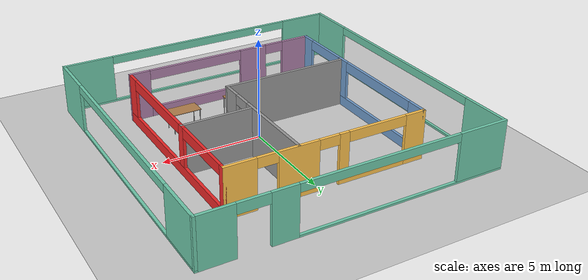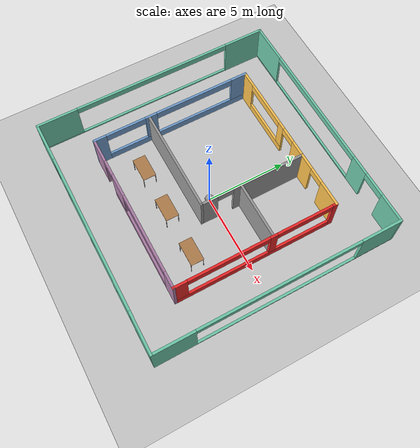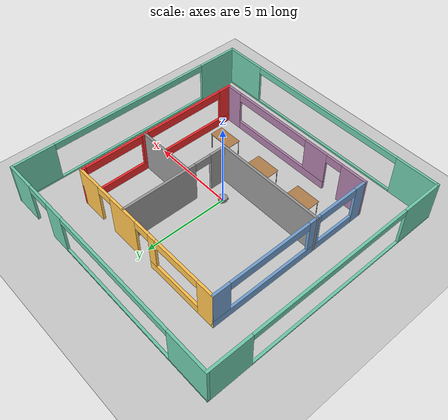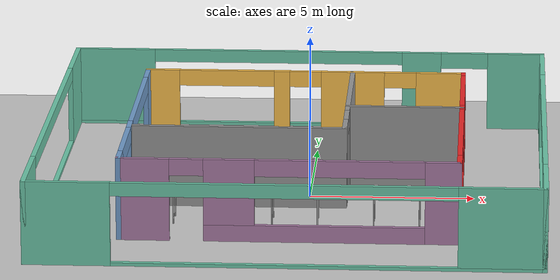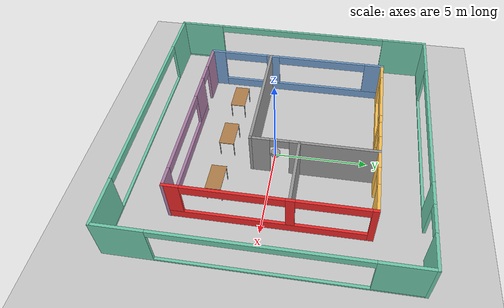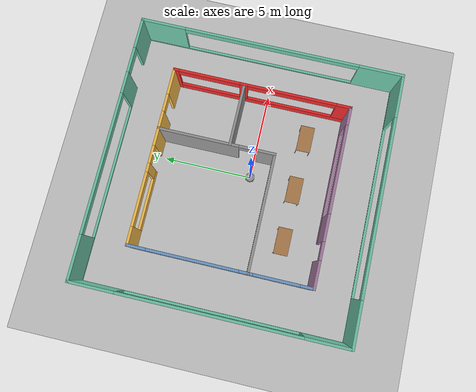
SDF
<sdf version="1.6">
 <world name="default">
  <model name="ground_plane">
   <static>1</static>
   <link name="link">
    <collision name="collision">
     <geometry><plane><normal>0 0 1</normal><size>100 100</size></plane></geometry>
     <surface>
      <contact><collide_bitmask>65535</collide_bitmask></contact>
      <friction><ode><mu>100</mu><mu2>50</mu2></ode></friction>
     </surface>
    </collision>
    <visual name="visual">
     <cast_shadows>0</cast_shadows>
     <geometry><plane><normal>0 0 1</normal><size>100 100</size></plane></geometry>
     <material>
      <script><uri>file://media/materials/scripts/gazebo.material</uri><name>Gazebo/Grey</name></script>
     </material>
    </visual>
   </link>
  </model>
  <model name="robot">
   <link name="link_0">
    <inertial>
     <mass>1</mass>
     <inertia><ixx>0.145833</ixx><ixy>0</ixy><ixz>0</ixz><iyy>0.145833</iyy><iyz>0</iyz><izz>0.125</izz></inertia>
    </inertial>
    <pose>-0.1 0.2 0.1 1.5708 -0 0</pose>
    <visual name="visual">
     <geometry><cylinder><radius>0.1</radius><length>0.05</length></cylinder></geometry>
     <material>
      <lighting>1</lighting>
      <script><uri>file://media/materials/scripts/gazebo.material</uri><name>Gazebo/Grey</name></script>
      <shader type="vertex"><normal_map>__default__</normal_map></shader>
      <ambient>0.3 0.3 0.3 1</ambient>
      <diffuse>0.7 0.7 0.7 1</diffuse>
      <specular>0.01 0.01 0.01 1</specular>
      <emissive>0 0 0 1</emissive>
     </material>
    </visual>
    <collision name="collision">
     <geometry><cylinder><radius>0.1</radius><length>0.05</length></cylinder></geometry>
     <surface>
      <friction>
       <ode><mu>1</mu><mu2>1</mu2><fdir1>0 0 0</fdir1><slip1>0</slip1><slip2>0</slip2></ode>
       <torsional>
        <coefficient>1</coefficient>
        <patch_radius>0</patch_radius>
        <surface_radius>0</surface_radius>
        <use_patch_radius>1</use_patch_radius>
        <ode><slip>0</slip></ode>
       </torsional>
      </friction>
      <bounce><restitution_coefficient>0</restitution_coefficient><threshold>1e+06</threshold></bounce>
      <contact>
       <collide_without_contact>0</collide_without_contact>
       <collide_without_contact_bitmask>1</collide_without_contact_bitmask>
       <collide_bitmask>1</collide_bitmask>
       <ode>
        <soft_cfm>0</soft_cfm>
        <soft_erp>0.2</soft_erp>
        <kp>1e+13</kp>
        <kd>1</kd>
        <max_vel>0.01</max_vel>
        <min_depth>0</min_depth>
       </ode>
       <bullet>
        <split_impulse>1</split_impulse>
        <split_impulse_penetration_threshold>-0.01</split_impulse_penetration_threshold>
        <soft_cfm>0</soft_cfm>
        <soft_erp>0.2</soft_erp>
        <kp>1e+13</kp>
        <kd>1</kd>
       </bullet>
      </contact>
     </surface>
    </collision>
   </link>
   <link name="link_0_clone">
    <inertial>
     <mass>1</mass>
     <inertia><ixx>0.145833</ixx><ixy>0</ixy><ixz>0</ixz><iyy>0.145833</iyy><iyz>0</iyz><izz>0.125</izz></inertia>
    </inertial>
    <pose>-0.1 -0.2 0.1 1.5708 -0 0</pose>
    <visual name="visual">
     <geometry><cylinder><radius>0.1</radius><length>0.05</length></cylinder></geometry>
     <material>
      <lighting>1</lighting>
      <script><uri>file://media/materials/scripts/gazebo.material</uri><name>Gazebo/Grey</name></script>
      <shader type="vertex"><normal_map>__default__</normal_map></shader>
      <ambient>0.3 0.3 0.3 1</ambient>
      <diffuse>0.7 0.7 0.7 1</diffuse>
      <specular>0.01 0.01 0.01 1</specular>
      <emissive>0 0 0 1</emissive>
     </material>
    </visual>
    <collision name="collision">
     <geometry><cylinder><radius>0.1</radius><length>0.05</length></cylinder></geometry>
     <surface>
      <friction>
       <ode><mu>1</mu><mu2>1</mu2><fdir1>0 0 0</fdir1><slip1>0</slip1><slip2>0</slip2></ode>
       <torsional>
        <coefficient>1</coefficient>
        <patch_radius>0</patch_radius>
        <surface_radius>0</surface_radius>
        <use_patch_radius>1</use_patch_radius>
        <ode><slip>0</slip></ode>
       </torsional>
      </friction>
      <bounce><restitution_coefficient>0</restitution_coefficient><threshold>1e+06</threshold></bounce>
      <contact>
       <collide_without_contact>0</collide_without_contact>
       <collide_without_contact_bitmask>1</collide_without_contact_bitmask>
       <collide_bitmask>1</collide_bitmask>
       <ode>
        <soft_cfm>0</soft_cfm>
        <soft_erp>0.2</soft_erp>
        <kp>1e+13</kp>
        <kd>1</kd>
        <max_vel>0.01</max_vel>
        <min_depth>0</min_depth>
       </ode>
       <bullet>
        <split_impulse>1</split_impulse>
        <split_impulse_penetration_threshold>-0.01</split_impulse_penetration_threshold>
        <soft_cfm>0</soft_cfm>
        <soft_erp>0.2</soft_erp>
        <kp>1e+13</kp>
        <kd>1</kd>
       </bullet>
      </contact>
     </surface>
    </collision>
   </link>
   <link name="link_1">
    <inertial>
     <mass>1</mass>
     <inertia><ixx>0.145833</ixx><ixy>0</ixy><ixz>0</ixz><iyy>0.145833</iyy><iyz>0</iyz><izz>0.125</izz></inertia>
    </inertial>
    <pose>-0 0 0.15 0 -0 0</pose>
    <visual name="visual">
     <geometry><cylinder><radius>0.25</radius><length>0.2</length></cylinder></geometry>
     <material>
      <lighting>1</lighting>
      <script><uri>file://media/materials/scripts/gazebo.material</uri><name>Gazebo/Grey</name></script>
      <shader type="vertex"><normal_map>__default__</normal_map></shader>
      <ambient>0.3 0.3 0.3 1</ambient>
      <diffuse>0.7 0.7 0.7 1</diffuse>
      <specular>0.01 0.01 0.01 1</specular>
      <emissive>0 0 0 1</emissive>
     </material>
    </visual>
    <collision name="collision">
     <geometry><cylinder><radius>0.25</radius><length>0.2</length></cylinder></geometry>
     <surface>
      <friction>
       <ode><mu>1</mu><mu2>1</mu2><fdir1>0 0 0</fdir1><slip1>0</slip1><slip2>0</slip2></ode>
       <torsional>
        <coefficient>1</coefficient>
        <patch_radius>0</patch_radius>
        <surface_radius>0</surface_radius>
        <use_patch_radius>1</use_patch_radius>
        <ode><slip>0</slip></ode>
       </torsional>
      </friction>
      <bounce><restitution_coefficient>0</restitution_coefficient><threshold>1e+06</threshold></bounce>
      <contact>
       <collide_without_contact>0</collide_without_contact>
       <collide_without_contact_bitmask>1</collide_without_contact_bitmask>
       <collide_bitmask>1</collide_bitmask>
       <ode>
        <soft_cfm>0</soft_cfm>
        <soft_erp>0.2</soft_erp>
        <kp>1e+13</kp>
        <kd>1</kd>
        <max_vel>0.01</max_vel>
        <min_depth>0</min_depth>
       </ode>
       <bullet>
        <split_impulse>1</split_impulse>
        <split_impulse_penetration_threshold>-0.01</split_impulse_penetration_threshold>
        <soft_cfm>0</soft_cfm>
        <soft_erp>0.2</soft_erp>
        <kp>1e+13</kp>
        <kd>1</kd>
       </bullet>
      </contact>
     </surface>
    </collision>
   </link>
   <link name="link_2">
    <inertial>
     <mass>1</mass>
     <inertia><ixx>0.1</ixx><ixy>0</ixy><ixz>0</ixz><iyy>0.1</iyy><iyz>0</iyz><izz>0.1</izz></inertia>
    </inertial>
    <pose>0.15 0 0.075 0 -0 0</pose>
    <visual name="visual">
     <geometry><sphere><radius>0.075</radius></sphere></geometry>
     <material>
      <lighting>1</lighting>
      <script><uri>file://media/materials/scripts/gazebo.material</uri><name>Gazebo/Grey</name></script>
      <shader type="vertex"><normal_map>__default__</normal_map></shader>
      <ambient>0.3 0.3 0.3 1</ambient>
      <diffuse>0.7 0.7 0.7 1</diffuse>
      <specular>0.01 0.01 0.01 1</specular>
      <emissive>0 0 0 1</emissive>
     </material>
    </visual>
    <collision name="collision">
     <geometry><sphere><radius>0.075</radius></sphere></geometry>
     <surface>
      <friction>
       <ode><mu>1</mu><mu2>1</mu2><fdir1>0 0 0</fdir1><slip1>0</slip1><slip2>0</slip2></ode>
       <torsional>
        <coefficient>1</coefficient>
        <patch_radius>0</patch_radius>
        <surface_radius>0</surface_radius>
        <use_patch_radius>1</use_patch_radius>
        <ode><slip>0</slip></ode>
       </torsional>
      </friction>
      <bounce><restitution_coefficient>0</restitution_coefficient><threshold>1e+06</threshold></bounce>
      <contact>
       <collide_without_contact>0</collide_without_contact>
       <collide_without_contact_bitmask>1</collide_without_contact_bitmask>
       <collide_bitmask>1</collide_bitmask>
       <ode>
        <soft_cfm>0</soft_cfm>
        <soft_erp>0.2</soft_erp>
        <kp>1e+13</kp>
        <kd>1</kd>
        <max_vel>0.01</max_vel>
        <min_depth>0</min_depth>
       </ode>
       <bullet>
        <split_impulse>1</split_impulse>
        <split_impulse_penetration_threshold>-0.01</split_impulse_penetration_threshold>
        <soft_cfm>0</soft_cfm>
        <soft_erp>0.2</soft_erp>
        <kp>1e+13</kp>
        <kd>1</kd>
       </bullet>
      </contact>
     </surface>
    </collision>
   </link>
   <joint name="link_1_JOINT_0" type="ball">
    <parent>link_1</parent>
    <child>link_2</child>
    <physics>
     <ode><limit><cfm>0</cfm><erp>0.2</erp></limit><suspension><cfm>0</cfm><erp>0.2</erp></suspension></ode>
    </physics>
   </joint>
   <joint name="link_1_JOINT_1" type="revolute">
    <parent>link_1</parent>
    <child>link_0_clone</child>
    <axis>
     <xyz>0 0 1</xyz>
     <use_parent_model_frame>0</use_parent_model_frame>
     <limit>
      <lower>-1.79769e+308</lower>
      <upper>1.79769e+308</upper>
      <effort>-1</effort>
      <velocity>-1</velocity>
     </limit>
     <dynamics>
      <spring_reference>0</spring_reference>
      <spring_stiffness>0</spring_stiffness>
      <damping>0</damping>
     </dynamics>
    </axis>
    <physics>
     <ode><limit><cfm>0</cfm><erp>0.2</erp></limit><suspension><cfm>0</cfm><erp>0.2</erp></suspension></ode>
    </physics>
   </joint>
   <joint name="link_1_JOINT_2" type="revolute">
    <parent>link_1</parent>
    <child>link_0</child>
    <axis>
     <xyz>0 0 1</xyz>
     <use_parent_model_frame>0</use_parent_model_frame>
     <limit>
      <lower>-1.79769e+308</lower>
      <upper>1.79769e+308</upper>
      <effort>-1</effort>
      <velocity>-1</velocity>
     </limit>
     <dynamics>
      <spring_reference>0</spring_reference>
      <spring_stiffness>0</spring_stiffness>
      <damping>0</damping>
     </dynamics>
    </axis>
    <physics>
     <ode><limit><cfm>0</cfm><erp>0.2</erp></limit><suspension><cfm>0</cfm><erp>0.2</erp></suspension></ode>
    </physics>
   </joint>
   <static>0</static>
   <pose>-0.000282 -0.000108 0.001316 -1e-06 -0.013075 -0.000956</pose>
  </model>
  <model name="building">
   <pose>-0.407879 0.40823 0 0 -0 0</pose>
   <link name="Wall_11">
    <pose>0 5 0 0 -0 0</pose>
    <visual name="Wall_11_Visual_0">
     <pose>-4.5375 0 1.25 0 -0 0</pose>
     <geometry><box><size>1.075 0.15 2.5</size></box></geometry>
     <material>
      <script><uri>file://media/materials/scripts/gazebo.material</uri><name>Gazebo/Grey</name></script>
      <ambient>1 0.764706 0.305882 1</ambient>
     </material>
     <meta><layer>0</layer></meta>
    </visual>
    <collision name="Wall_11_Collision_0">
     <geometry><box><size>1.075 0.15 2.5</size></box></geometry>
     <pose>-4.5375 0 1.25 0 -0 0</pose>
    </collision>
    <visual name="Wall_11_Visual_1">
     <pose>1.5 0 1.25 0 -0 0</pose>
     <geometry><box><size>2 0.15 2.5</size></box></geometry>
     <material>
      <script><uri>file://media/materials/scripts/gazebo.material</uri><name>Gazebo/Grey</name></script>
      <ambient>1 0.764706 0.305882 1</ambient>
     </material>
     <meta><layer>0</layer></meta>
    </visual>
    <collision name="Wall_11_Collision_1">
     <geometry><box><size>2 0.15 2.5</size></box></geometry>
     <pose>1.5 0 1.25 0 -0 0</pose>
    </collision>
    <visual name="Wall_11_Visual_2">
     <pose>4.2875 0 1.25 0 -0 0</pose>
     <geometry><box><size>1.575 0.15 2.5</size></box></geometry>
     <material>
      <script><uri>file://media/materials/scripts/gazebo.material</uri><name>Gazebo/Grey</name></script>
      <ambient>1 0.764706 0.305882 1</ambient>
     </material>
     <meta><layer>0</layer></meta>
    </visual>
    <collision name="Wall_11_Collision_2">
     <geometry><box><size>1.575 0.15 2.5</size></box></geometry>
     <pose>4.2875 0 1.25 0 -0 0</pose>
    </collision>
    <visual name="Wall_11_Visual_3">
     <pose>-2.25 0 0.25 0 -0 0</pose>
     <geometry><box><size>3.5 0.15 0.5</size></box></geometry>
     <material>
      <script><uri>file://media/materials/scripts/gazebo.material</uri><name>Gazebo/Grey</name></script>
      <ambient>1 0.764706 0.305882 1</ambient>
     </material>
     <meta><layer>0</layer></meta>
    </visual>
    <collision name="Wall_11_Collision_3">
     <geometry><box><size>3.5 0.15 0.5</size></box></geometry>
     <pose>-2.25 0 0.25 0 -0 0</pose>
    </collision>
    <visual name="Wall_11_Visual_4">
     <pose>-0.75 0 1.5 0 -0 0</pose>
     <geometry><box><size>0.5 0.15 2</size></box></geometry>
     <material>
      <script><uri>file://media/materials/scripts/gazebo.material</uri><name>Gazebo/Grey</name></script>
      <ambient>1 0.764706 0.305882 1</ambient>
     </material>
     <meta><layer>0</layer></meta>
    </visual>
    <collision name="Wall_11_Collision_4">
     <geometry><box><size>0.5 0.15 2</size></box></geometry>
     <pose>-0.75 0 1.5 0 -0 0</pose>
    </collision>
    <visual name="Wall_11_Visual_5">
     <pose>-2.5 0 2.25 0 -0 0</pose>
     <geometry><box><size>3 0.15 0.5</size></box></geometry>
     <material>
      <script><uri>file://media/materials/scripts/gazebo.material</uri><name>Gazebo/Grey</name></script>
      <ambient>1 0.764706 0.305882 1</ambient>
     </material>
     <meta><layer>0</layer></meta>
    </visual>
    <collision name="Wall_11_Collision_5">
     <geometry><box><size>3 0.15 0.5</size></box></geometry>
     <pose>-2.5 0 2.25 0 -0 0</pose>
    </collision>
    <visual name="Wall_11_Visual_6">
     <pose>3 0 2.25 0 -0 0</pose>
     <geometry><box><size>1 0.15 0.5</size></box></geometry>
     <material>
      <script><uri>file://media/materials/scripts/gazebo.material</uri><name>Gazebo/Grey</name></script>
      <ambient>1 0.764706 0.305882 1</ambient>
     </material>
     <meta><layer>0</layer></meta>
    </visual>
    <collision name="Wall_11_Collision_6">
     <geometry><box><size>1 0.15 0.5</size></box></geometry>
     <pose>3 0 2.25 0 -0 0</pose>
    </collision>
    <visual name="Wall_11_Visual_7">
     <pose>0 0 2.25 0 -0 0</pose>
     <geometry><box><size>1 0.15 0.5</size></box></geometry>
     <material>
      <script><uri>file://media/materials/scripts/gazebo.material</uri><name>Gazebo/Grey</name></script>
      <ambient>1 0.764706 0.305882 1</ambient>
     </material>
     <meta><layer>0</layer></meta>
    </visual>
    <collision name="Wall_11_Collision_7">
     <geometry><box><size>1 0.15 0.5</size></box></geometry>
     <pose>0 0 2.25 0 -0 0</pose>
    </collision>
   </link>
   <link name="Wall_12">
    <pose>5 0 0 0 -0 -1.5708</pose>
    <visual name="Wall_12_Visual_0">
     <pose>-4.9125 0 1.25 0 -0 0</pose>
     <geometry><box><size>0.325 0.15 2.5</size></box></geometry>
     <material>
      <script><uri>file://media/materials/scripts/gazebo.material</uri><name>Gazebo/Grey</name></script>
      <ambient>0.937255 0.160784 0.160784 1</ambient>
     </material>
     <meta><layer>0</layer></meta>
    </visual>
    <collision name="Wall_12_Collision_0">
     <geometry><box><size>0.325 0.15 2.5</size></box></geometry>
     <pose>-4.9125 0 1.25 0 -0 0</pose>
    </collision>
    <visual name="Wall_12_Visual_1">
     <pose>0.1625 0 0.25 0 -0 0</pose>
     <geometry><box><size>9.825 0.15 0.5</size></box></geometry>
     <material>
      <script><uri>file://media/materials/scripts/gazebo.material</uri><name>Gazebo/Grey</name></script>
      <ambient>0.937255 0.160784 0.160784 1</ambient>
     </material>
     <meta><layer>0</layer></meta>
    </visual>
    <collision name="Wall_12_Collision_1">
     <geometry><box><size>9.825 0.15 0.5</size></box></geometry>
     <pose>0.1625 0 0.25 0 -0 0</pose>
    </collision>
    <visual name="Wall_12_Visual_2">
     <pose>-1.025 0 1.5 0 -0 0</pose>
     <geometry><box><size>0.45 0.15 2</size></box></geometry>
     <material>
      <script><uri>file://media/materials/scripts/gazebo.material</uri><name>Gazebo/Grey</name></script>
      <ambient>0.937255 0.160784 0.160784 1</ambient>
     </material>
     <meta><layer>0</layer></meta>
    </visual>
    <collision name="Wall_12_Collision_2">
     <geometry><box><size>0.45 0.15 2</size></box></geometry>
     <pose>-1.025 0 1.5 0 -0 0</pose>
    </collision>
    <visual name="Wall_12_Visual_3">
     <pose>4.6375 0 1.5 0 -0 0</pose>
     <geometry><box><size>0.875 0.15 2</size></box></geometry>
     <material>
      <script><uri>file://media/materials/scripts/gazebo.material</uri><name>Gazebo/Grey</name></script>
      <ambient>0.937255 0.160784 0.160784 1</ambient>
     </material>
     <meta><layer>0</layer></meta>
    </visual>
    <collision name="Wall_12_Collision_3">
     <geometry><box><size>0.875 0.15 2</size></box></geometry>
     <pose>4.6375 0 1.5 0 -0 0</pose>
    </collision>
    <visual name="Wall_12_Visual_4">
     <pose>-3 0 2.25 0 -0 0</pose>
     <geometry><box><size>3.5 0.15 0.5</size></box></geometry>
     <material>
      <script><uri>file://media/materials/scripts/gazebo.material</uri><name>Gazebo/Grey</name></script>
      <ambient>0.937255 0.160784 0.160784 1</ambient>
     </material>
     <meta><layer>0</layer></meta>
    </visual>
    <collision name="Wall_12_Collision_4">
     <geometry><box><size>3.5 0.15 0.5</size></box></geometry>
     <pose>-3 0 2.25 0 -0 0</pose>
    </collision>
    <visual name="Wall_12_Visual_5">
     <pose>1.7 0 2.25 0 -0 0</pose>
     <geometry><box><size>5 0.15 0.5</size></box></geometry>
     <material>
      <script><uri>file://media/materials/scripts/gazebo.material</uri><name>Gazebo/Grey</name></script>
      <ambient>0.937255 0.160784 0.160784 1</ambient>
     </material>
     <meta><layer>0</layer></meta>
    </visual>
    <collision name="Wall_12_Collision_5">
     <geometry><box><size>5 0.15 0.5</size></box></geometry>
     <pose>1.7 0 2.25 0 -0 0</pose>
    </collision>
   </link>
   <link name="Wall_13">
    <pose>0 -5 0 0 -0 3.14159</pose>
    <visual name="Wall_13_Visual_0">
     <pose>-4.5375 0 1.25 0 -0 0</pose>
     <geometry><box><size>1.075 0.15 2.5</size></box></geometry>
     <material>
      <script><uri>file://media/materials/scripts/gazebo.material</uri><name>Gazebo/Grey</name></script>
      <ambient>0.678431 0.498039 0.658824 1</ambient>
     </material>
     <meta><layer>0</layer></meta>
    </visual>
    <collision name="Wall_13_Collision_0">
     <geometry><box><size>1.075 0.15 2.5</size></box></geometry>
     <pose>-4.5375 0 1.25 0 -0 0</pose>
    </collision>
    <visual name="Wall_13_Visual_1">
     <pose>4.2875 0 1.25 0 -0 0</pose>
     <geometry><box><size>1.575 0.15 2.5</size></box></geometry>
     <material>
      <script><uri>file://media/materials/scripts/gazebo.material</uri><name>Gazebo/Grey</name></script>
      <ambient>0.678431 0.498039 0.658824 1</ambient>
     </material>
     <meta><layer>0</layer></meta>
    </visual>
    <collision name="Wall_13_Collision_1">
     <geometry><box><size>1.575 0.15 2.5</size></box></geometry>
     <pose>4.2875 0 1.25 0 -0 0</pose>
    </collision>
    <visual name="Wall_13_Visual_2">
     <pose>-0.75 0 0.25 0 -0 0</pose>
     <geometry><box><size>6.5 0.15 0.5</size></box></geometry>
     <material>
      <script><uri>file://media/materials/scripts/gazebo.material</uri><name>Gazebo/Grey</name></script>
      <ambient>0.678431 0.498039 0.658824 1</ambient>
     </material>
     <meta><layer>0</layer></meta>
    </visual>
    <collision name="Wall_13_Collision_2">
     <geometry><box><size>6.5 0.15 0.5</size></box></geometry>
     <pose>-0.75 0 0.25 0 -0 0</pose>
    </collision>
    <visual name="Wall_13_Visual_3">
     <pose>1.75 0 1.5 0 -0 0</pose>
     <geometry><box><size>1.5 0.15 2</size></box></geometry>
     <material>
      <script><uri>file://media/materials/scripts/gazebo.material</uri><name>Gazebo/Grey</name></script>
      <ambient>0.678431 0.498039 0.658824 1</ambient>
     </material>
     <meta><layer>0</layer></meta>
    </visual>
    <collision name="Wall_13_Collision_3">
     <geometry><box><size>1.5 0.15 2</size></box></geometry>
     <pose>1.75 0 1.5 0 -0 0</pose>
    </collision>
    <visual name="Wall_13_Visual_4">
     <pose>-1.5 0 2.25 0 -0 0</pose>
     <geometry><box><size>5 0.15 0.5</size></box></geometry>
     <material>
      <script><uri>file://media/materials/scripts/gazebo.material</uri><name>Gazebo/Grey</name></script>
      <ambient>0.678431 0.498039 0.658824 1</ambient>
     </material>
     <meta><layer>0</layer></meta>
    </visual>
    <collision name="Wall_13_Collision_4">
     <geometry><box><size>5 0.15 0.5</size></box></geometry>
     <pose>-1.5 0 2.25 0 -0 0</pose>
    </collision>
    <visual name="Wall_13_Visual_5">
     <pose>3 0 2.25 0 -0 0</pose>
     <geometry><box><size>1 0.15 0.5</size></box></geometry>
     <material>
      <script><uri>file://media/materials/scripts/gazebo.material</uri><name>Gazebo/Grey</name></script>
      <ambient>0.678431 0.498039 0.658824 1</ambient>
     </material>
     <meta><layer>0</layer></meta>
    </visual>
    <collision name="Wall_13_Collision_5">
     <geometry><box><size>1 0.15 0.5</size></box></geometry>
     <pose>3 0 2.25 0 -0 0</pose>
    </collision>
   </link>
   <link name="Wall_14">
    <pose>-5 0 0 0 -0 1.5708</pose>
    <visual name="Wall_14_Visual_0">
     <pose>-4.6625 0 1.25 0 -0 0</pose>
     <geometry><box><size>0.825 0.15 2.5</size></box></geometry>
     <material>
      <script><uri>file://media/materials/scripts/gazebo.material</uri><name>Gazebo/Grey</name></script>
      <ambient>0.447059 0.623529 0.811765 1</ambient>
     </material>
     <meta><layer>0</layer></meta>
    </visual>
    <collision name="Wall_14_Collision_0">
     <geometry><box><size>0.825 0.15 2.5</size></box></geometry>
     <pose>-4.6625 0 1.25 0 -0 0</pose>
    </collision>
    <visual name="Wall_14_Visual_1">
     <pose>0.4125 0 0.25 0 -0 0</pose>
     <geometry><box><size>9.325 0.15 0.5</size></box></geometry>
     <material>
      <script><uri>file://media/materials/scripts/gazebo.material</uri><name>Gazebo/Grey</name></script>
      <ambient>0.447059 0.623529 0.811765 1</ambient>
     </material>
     <meta><layer>0</layer></meta>
    </visual>
    <collision name="Wall_14_Collision_1">
     <geometry><box><size>9.325 0.15 0.5</size></box></geometry>
     <pose>0.4125 0 0.25 0 -0 0</pose>
    </collision>
    <visual name="Wall_14_Visual_2">
     <pose>-1.375 0 1.5 0 -0 0</pose>
     <geometry><box><size>0.75 0.15 2</size></box></geometry>
     <material>
      <script><uri>file://media/materials/scripts/gazebo.material</uri><name>Gazebo/Grey</name></script>
      <ambient>0.447059 0.623529 0.811765 1</ambient>
     </material>
     <meta><layer>0</layer></meta>
    </visual>
    <collision name="Wall_14_Collision_2">
     <geometry><box><size>0.75 0.15 2</size></box></geometry>
     <pose>-1.375 0 1.5 0 -0 0</pose>
    </collision>
    <visual name="Wall_14_Visual_3">
     <pose>4.5375 0 1.5 0 -0 0</pose>
     <geometry><box><size>1.075 0.15 2</size></box></geometry>
     <material>
      <script><uri>file://media/materials/scripts/gazebo.material</uri><name>Gazebo/Grey</name></script>
      <ambient>0.447059 0.623529 0.811765 1</ambient>
     </material>
     <meta><layer>0</layer></meta>
    </visual>
    <collision name="Wall_14_Collision_3">
     <geometry><box><size>1.075 0.15 2</size></box></geometry>
     <pose>4.5375 0 1.5 0 -0 0</pose>
    </collision>
    <visual name="Wall_14_Visual_4">
     <pose>-3 0 2.25 0 -0 0</pose>
     <geometry><box><size>2.5 0.15 0.5</size></box></geometry>
     <material>
      <script><uri>file://media/materials/scripts/gazebo.material</uri><name>Gazebo/Grey</name></script>
      <ambient>0.447059 0.623529 0.811765 1</ambient>
     </material>
     <meta><layer>0</layer></meta>
    </visual>
    <collision name="Wall_14_Collision_4">
     <geometry><box><size>2.5 0.15 0.5</size></box></geometry>
     <pose>-3 0 2.25 0 -0 0</pose>
    </collision>
    <visual name="Wall_14_Visual_5">
     <pose>1.5 0 2.25 0 -0 0</pose>
     <geometry><box><size>5 0.15 0.5</size></box></geometry>
     <material>
      <script><uri>file://media/materials/scripts/gazebo.material</uri><name>Gazebo/Grey</name></script>
      <ambient>0.447059 0.623529 0.811765 1</ambient>
     </material>
     <meta><layer>0</layer></meta>
    </visual>
    <collision name="Wall_14_Collision_5">
     <geometry><box><size>5 0.15 0.5</size></box></geometry>
     <pose>1.5 0 2.25 0 -0 0</pose>
    </collision>
   </link>
   <link name="Wall_16">
    <pose>1.5 1.75 0 0 -0 -1.5708</pose>
    <visual name="Wall_16_Visual_0">
     <pose>-1.0375 0 1.25 0 -0 0</pose>
     <geometry><box><size>4.575 0.15 2.5</size></box></geometry>
     <material>
      <script><uri>file://media/materials/scripts/gazebo.material</uri><name>Gazebo/Grey</name></script>
      <ambient>1 1 1 1</ambient>
     </material>
     <meta><layer>0</layer></meta>
    </visual>
    <collision name="Wall_16_Collision_0">
     <geometry><box><size>4.575 0.15 2.5</size></box></geometry>
     <pose>-1.0375 0 1.25 0 -0 0</pose>
    </collision>
    <visual name="Wall_16_Visual_1">
     <pose>2.7875 0 1.25 0 -0 0</pose>
     <geometry><box><size>1.075 0.15 2.5</size></box></geometry>
     <material>
      <script><uri>file://media/materials/scripts/gazebo.material</uri><name>Gazebo/Grey</name></script>
      <ambient>1 1 1 1</ambient>
     </material>
     <meta><layer>0</layer></meta>
    </visual>
    <collision name="Wall_16_Collision_1">
     <geometry><box><size>1.075 0.15 2.5</size></box></geometry>
     <pose>2.7875 0 1.25 0 -0 0</pose>
    </collision>
    <visual name="Wall_16_Visual_2">
     <pose>1.75 0 2.25 0 -0 0</pose>
     <geometry><box><size>1 0.15 0.5</size></box></geometry>
     <material>
      <script><uri>file://media/materials/scripts/gazebo.material</uri><name>Gazebo/Grey</name></script>
      <ambient>1 1 1 1</ambient>
     </material>
     <meta><layer>0</layer></meta>
    </visual>
    <collision name="Wall_16_Collision_2">
     <geometry><box><size>1 0.15 0.5</size></box></geometry>
     <pose>1.75 0 2.25 0 -0 0</pose>
    </collision>
   </link>
   <link name="Wall_17">
    <collision name="Wall_17_Collision">
     <geometry><box><size>6.65 0.15 2.5</size></box></geometry>
     <pose>0 0 1.25 0 -0 0</pose>
    </collision>
    <visual name="Wall_17_Visual">
     <pose>0 0 1.25 0 -0 0</pose>
     <geometry><box><size>6.65 0.15 2.5</size></box></geometry>
     <material>
      <script><uri>file://media/materials/scripts/gazebo.material</uri><name>Gazebo/Grey</name></script>
      <ambient>1 1 1 1</ambient>
     </material>
     <meta><layer>0</layer></meta>
    </visual>
    <pose>-1.75 -1.5 0 0 -0 3.14159</pose>
   </link>
   <link name="Wall_19">
    <collision name="Wall_19_Collision">
     <geometry><box><size>3.65 0.15 2.5</size></box></geometry>
     <pose>0 0 1.25 0 -0 0</pose>
    </collision>
    <visual name="Wall_19_Visual">
     <pose>0 0 1.25 0 -0 0</pose>
     <geometry><box><size>3.65 0.15 2.5</size></box></geometry>
     <material>
      <script><uri>file://media/materials/scripts/gazebo.material</uri><name>Gazebo/Grey</name></script>
      <ambient>1 1 1 1</ambient>
     </material>
     <meta><layer>0</layer></meta>
    </visual>
    <pose>3.25 1 0 0 -0 0</pose>
   </link>
   <link name="Wall_21">
    <pose>-7.5 0 0 0 -0 -1.5708</pose>
    <visual name="Wall_21_Visual_0">
     <pose>-6.2875 0 1.25 0 -0 0</pose>
     <geometry><box><size>2.575 0.15 2.5</size></box></geometry>
     <material>
      <script><uri>file://media/materials/scripts/gazebo.material</uri><name>Gazebo/Grey</name></script>
      <ambient>0.435294 0.796078 0.67451 1</ambient>
     </material>
     <meta><layer>0</layer></meta>
    </visual>
    <collision name="Wall_21_Collision_0">
     <geometry><box><size>2.575 0.15 2.5</size></box></geometry>
     <pose>-6.2875 0 1.25 0 -0 0</pose>
    </collision>
    <visual name="Wall_21_Visual_1">
     <pose>1.2875 0 0.05 0 -0 0</pose>
     <geometry><box><size>12.575 0.15 0.1</size></box></geometry>
     <material>
      <script><uri>file://media/materials/scripts/gazebo.material</uri><name>Gazebo/Grey</name></script>
      <ambient>0.435294 0.796078 0.67451 1</ambient>
     </material>
     <meta><layer>0</layer></meta>
    </visual>
    <collision name="Wall_21_Collision_1">
     <geometry><box><size>12.575 0.15 0.1</size></box></geometry>
     <pose>1.2875 0 0.05 0 -0 0</pose>
    </collision>
    <visual name="Wall_21_Visual_2">
     <pose>6.2875 0 1.3 0 -0 0</pose>
     <geometry><box><size>2.575 0.15 2.4</size></box></geometry>
     <material>
      <script><uri>file://media/materials/scripts/gazebo.material</uri><name>Gazebo/Grey</name></script>
      <ambient>0.435294 0.796078 0.67451 1</ambient>
     </material>
     <meta><layer>0</layer></meta>
    </visual>
    <collision name="Wall_21_Collision_2">
     <geometry><box><size>2.575 0.15 2.4</size></box></geometry>
     <pose>6.2875 0 1.3 0 -0 0</pose>
    </collision>
    <visual name="Wall_21_Visual_3">
     <pose>0 0 2.3 0 -0 0</pose>
     <geometry><box><size>10 0.15 0.4</size></box></geometry>
     <material>
      <script><uri>file://media/materials/scripts/gazebo.material</uri><name>Gazebo/Grey</name></script>
      <ambient>0.435294 0.796078 0.67451 1</ambient>
     </material>
     <meta><layer>0</layer></meta>
    </visual>
    <collision name="Wall_21_Collision_3">
     <geometry><box><size>10 0.15 0.4</size></box></geometry>
     <pose>0 0 2.3 0 -0 0</pose>
    </collision>
   </link>
   <link name="Wall_22">
    <pose>0 -7.5 0 0 -0 0</pose>
    <visual name="Wall_22_Visual_0">
     <pose>-6.2875 0 1.25 0 -0 0</pose>
     <geometry><box><size>2.575 0.15 2.5</size></box></geometry>
     <material>
      <script><uri>file://media/materials/scripts/gazebo.material</uri><name>Gazebo/Grey</name></script>
      <ambient>0.435294 0.796078 0.67451 1</ambient>
     </material>
     <meta><layer>0</layer></meta>
    </visual>
    <collision name="Wall_22_Collision_0">
     <geometry><box><size>2.575 0.15 2.5</size></box></geometry>
     <pose>-6.2875 0 1.25 0 -0 0</pose>
    </collision>
    <visual name="Wall_22_Visual_1">
     <pose>1.2875 0 0.05 0 -0 0</pose>
     <geometry><box><size>12.575 0.15 0.1</size></box></geometry>
     <material>
      <script><uri>file://media/materials/scripts/gazebo.material</uri><name>Gazebo/Grey</name></script>
      <ambient>0.435294 0.796078 0.67451 1</ambient>
     </material>
     <meta><layer>0</layer></meta>
    </visual>
    <collision name="Wall_22_Collision_1">
     <geometry><box><size>12.575 0.15 0.1</size></box></geometry>
     <pose>1.2875 0 0.05 0 -0 0</pose>
    </collision>
    <visual name="Wall_22_Visual_2">
     <pose>6.2875 0 1.3 0 -0 0</pose>
     <geometry><box><size>2.575 0.15 2.4</size></box></geometry>
     <material>
      <script><uri>file://media/materials/scripts/gazebo.material</uri><name>Gazebo/Grey</name></script>
      <ambient>0.435294 0.796078 0.67451 1</ambient>
     </material>
     <meta><layer>0</layer></meta>
    </visual>
    <collision name="Wall_22_Collision_2">
     <geometry><box><size>2.575 0.15 2.4</size></box></geometry>
     <pose>6.2875 0 1.3 0 -0 0</pose>
    </collision>
    <visual name="Wall_22_Visual_3">
     <pose>0 0 2.3 0 -0 0</pose>
     <geometry><box><size>10 0.15 0.4</size></box></geometry>
     <material>
      <script><uri>file://media/materials/scripts/gazebo.material</uri><name>Gazebo/Grey</name></script>
      <ambient>0.435294 0.796078 0.67451 1</ambient>
     </material>
     <meta><layer>0</layer></meta>
    </visual>
    <collision name="Wall_22_Collision_3">
     <geometry><box><size>10 0.15 0.4</size></box></geometry>
     <pose>0 0 2.3 0 -0 0</pose>
    </collision>
   </link>
   <link name="Wall_23">
    <pose>7.5 0 0 0 -0 1.5708</pose>
    <visual name="Wall_23_Visual_0">
     <pose>-6.2875 0 1.25 0 -0 0</pose>
     <geometry><box><size>2.575 0.15 2.5</size></box></geometry>
     <material>
      <script><uri>file://media/materials/scripts/gazebo.material</uri><name>Gazebo/Grey</name></script>
      <ambient>0.435294 0.796078 0.67451 1</ambient>
     </material>
     <meta><layer>0</layer></meta>
    </visual>
    <collision name="Wall_23_Collision_0">
     <geometry><box><size>2.575 0.15 2.5</size></box></geometry>
     <pose>-6.2875 0 1.25 0 -0 0</pose>
    </collision>
    <visual name="Wall_23_Visual_1">
     <pose>1.2875 0 0.05 0 -0 0</pose>
     <geometry><box><size>12.575 0.15 0.1</size></box></geometry>
     <material>
      <script><uri>file://media/materials/scripts/gazebo.material</uri><name>Gazebo/Grey</name></script>
      <ambient>0.435294 0.796078 0.67451 1</ambient>
     </material>
     <meta><layer>0</layer></meta>
    </visual>
    <collision name="Wall_23_Collision_1">
     <geometry><box><size>12.575 0.15 0.1</size></box></geometry>
     <pose>1.2875 0 0.05 0 -0 0</pose>
    </collision>
    <visual name="Wall_23_Visual_2">
     <pose>6.2875 0 1.3 0 -0 0</pose>
     <geometry><box><size>2.575 0.15 2.4</size></box></geometry>
     <material>
      <script><uri>file://media/materials/scripts/gazebo.material</uri><name>Gazebo/Grey</name></script>
      <ambient>0.435294 0.796078 0.67451 1</ambient>
     </material>
     <meta><layer>0</layer></meta>
    </visual>
    <collision name="Wall_23_Collision_2">
     <geometry><box><size>2.575 0.15 2.4</size></box></geometry>
     <pose>6.2875 0 1.3 0 -0 0</pose>
    </collision>
    <visual name="Wall_23_Visual_3">
     <pose>0 0 2.3 0 -0 0</pose>
     <geometry><box><size>10 0.15 0.4</size></box></geometry>
     <material>
      <script><uri>file://media/materials/scripts/gazebo.material</uri><name>Gazebo/Grey</name></script>
      <ambient>0.435294 0.796078 0.67451 1</ambient>
     </material>
     <meta><layer>0</layer></meta>
    </visual>
    <collision name="Wall_23_Collision_3">
     <geometry><box><size>10 0.15 0.4</size></box></geometry>
     <pose>0 0 2.3 0 -0 0</pose>
    </collision>
   </link>
   <link name="Wall_24">
    <pose>0 7.5 0 0 -0 3.14159</pose>
    <visual name="Wall_24_Visual_0">
     <pose>-6.6625 0 1.25 0 -0 0</pose>
     <geometry><box><size>1.825 0.15 2.5</size></box></geometry>
     <material>
      <script><uri>file://media/materials/scripts/gazebo.material</uri><name>Gazebo/Grey</name></script>
      <ambient>0.435294 0.796078 0.67451 1</ambient>
     </material>
     <meta><layer>0</layer></meta>
    </visual>
    <collision name="Wall_24_Collision_0">
     <geometry><box><size>1.825 0.15 2.5</size></box></geometry>
     <pose>-6.6625 0 1.25 0 -0 0</pose>
    </collision>
    <visual name="Wall_24_Visual_1">
     <pose>-3.625 0 1.25 0 -0 0</pose>
     <geometry><box><size>1.25 0.15 2.5</size></box></geometry>
     <material>
      <script><uri>file://media/materials/scripts/gazebo.material</uri><name>Gazebo/Grey</name></script>
      <ambient>0.435294 0.796078 0.67451 1</ambient>
     </material>
     <meta><layer>0</layer></meta>
    </visual>
    <collision name="Wall_24_Collision_1">
     <geometry><box><size>1.25 0.15 2.5</size></box></geometry>
     <pose>-3.625 0 1.25 0 -0 0</pose>
    </collision>
    <visual name="Wall_24_Visual_2">
     <pose>2.2875 0 0.05 0 -0 0</pose>
     <geometry><box><size>10.575 0.15 0.1</size></box></geometry>
     <material>
      <script><uri>file://media/materials/scripts/gazebo.material</uri><name>Gazebo/Grey</name></script>
      <ambient>0.435294 0.796078 0.67451 1</ambient>
     </material>
     <meta><layer>0</layer></meta>
    </visual>
    <collision name="Wall_24_Collision_2">
     <geometry><box><size>10.575 0.15 0.1</size></box></geometry>
     <pose>2.2875 0 0.05 0 -0 0</pose>
    </collision>
    <visual name="Wall_24_Visual_3">
     <pose>6.2875 0 1.3 0 -0 0</pose>
     <geometry><box><size>2.575 0.15 2.4</size></box></geometry>
     <material>
      <script><uri>file://media/materials/scripts/gazebo.material</uri><name>Gazebo/Grey</name></script>
      <ambient>0.435294 0.796078 0.67451 1</ambient>
     </material>
     <meta><layer>0</layer></meta>
    </visual>
    <collision name="Wall_24_Collision_3">
     <geometry><box><size>2.575 0.15 2.4</size></box></geometry>
     <pose>6.2875 0 1.3 0 -0 0</pose>
    </collision>
    <visual name="Wall_24_Visual_4">
     <pose>-5 0 2.25 0 -0 0</pose>
     <geometry><box><size>1.5 0.15 0.5</size></box></geometry>
     <material>
      <script><uri>file://media/materials/scripts/gazebo.material</uri><name>Gazebo/Grey</name></script>
      <ambient>0.435294 0.796078 0.67451 1</ambient>
     </material>
     <meta><layer>0</layer></meta>
    </visual>
    <collision name="Wall_24_Collision_4">
     <geometry><box><size>1.5 0.15 0.5</size></box></geometry>
     <pose>-5 0 2.25 0 -0 0</pose>
    </collision>
    <visual name="Wall_24_Visual_5">
     <pose>1 0 2.3 0 -0 0</pose>
     <geometry><box><size>8 0.15 0.4</size></box></geometry>
     <material>
      <script><uri>file://media/materials/scripts/gazebo.material</uri><name>Gazebo/Grey</name></script>
      <ambient>0.435294 0.796078 0.67451 1</ambient>
     </material>
     <meta><layer>0</layer></meta>
    </visual>
    <collision name="Wall_24_Collision_5">
     <geometry><box><size>8 0.15 0.4</size></box></geometry>
     <pose>1 0 2.3 0 -0 0</pose>
    </collision>
   </link>
   <static>1</static>
  </model>
  <model name="table">
   <static>1</static>
   <link name="link">
    <collision name="surface">
     <pose>0 0 1 0 -0 0</pose>
     <geometry><box><size>1.5 0.8 0.03</size></box></geometry>
     <surface><friction><ode><mu>0.6</mu><mu2>0.6</mu2></ode></friction></surface>
    </collision>
    <visual name="visual1">
     <pose>0 0 1 0 -0 0</pose>
     <geometry><box><size>1.5 0.8 0.03</size></box></geometry>
     <material>
      <script><uri>file://media/materials/scripts/gazebo.material</uri><name>Gazebo/Wood</name></script>
     </material>
    </visual>
    <collision name="front_left_leg">
     <pose>0.68 0.38 0.5 0 -0 0</pose>
     <geometry><cylinder><radius>0.02</radius><length>1</length></cylinder></geometry>
    </collision>
    <visual name="front_left_leg">
     <pose>0.68 0.38 0.5 0 -0 0</pose>
     <geometry><cylinder><radius>0.02</radius><length>1</length></cylinder></geometry>
     <material>
      <script><uri>file://media/materials/scripts/gazebo.material</uri><name>Gazebo/Grey</name></script>
     </material>
    </visual>
    <collision name="front_right_leg">
     <pose>0.68 -0.38 0.5 0 -0 0</pose>
     <geometry><cylinder><radius>0.02</radius><length>1</length></cylinder></geometry>
    </collision>
    <visual name="front_right_leg">
     <pose>0.68 -0.38 0.5 0 -0 0</pose>
     <geometry><cylinder><radius>0.02</radius><length>1</length></cylinder></geometry>
     <material>
      <script><uri>file://media/materials/scripts/gazebo.material</uri><name>Gazebo/Grey</name></script>
     </material>
    </visual>
    <collision name="back_right_leg">
     <pose>-0.68 -0.38 0.5 0 -0 0</pose>
     <geometry><cylinder><radius>0.02</radius><length>1</length></cylinder></geometry>
    </collision>
    <visual name="back_right_leg">
     <pose>-0.68 -0.38 0.5 0 -0 0</pose>
     <geometry><cylinder><radius>0.02</radius><length>1</length></cylinder></geometry>
     <material>
      <script><uri>file://media/materials/scripts/gazebo.material</uri><name>Gazebo/Grey</name></script>
     </material>
    </visual>
    <collision name="back_left_leg">
     <pose>-0.68 0.38 0.5 0 -0 0</pose>
     <geometry><cylinder><radius>0.02</radius><length>1</length></cylinder></geometry>
    </collision>
    <visual name="back_left_leg">
     <pose>-0.68 0.38 0.5 0 -0 0</pose>
     <geometry><cylinder><radius>0.02</radius><length>1</length></cylinder></geometry>
     <material>
      <script><uri>file://media/materials/scripts/gazebo.material</uri><name>Gazebo/Grey</name></script>
     </material>
    </visual>
   </link>
   <pose>-3.2566 -2.59541 0 0 -0 0</pose>
  </model>
  <model name="table_0">
   <static>1</static>
   <link name="link">
    <collision name="surface">
     <pose>0 0 1 0 -0 0</pose>
     <geometry><box><size>1.5 0.8 0.03</size></box></geometry>
     <surface><friction><ode><mu>0.6</mu><mu2>0.6</mu2></ode></friction></surface>
    </collision>
    <visual name="visual1">
     <pose>0 0 1 0 -0 0</pose>
     <geometry><box><size>1.5 0.8 0.03</size></box></geometry>
     <material>
      <script><uri>file://media/materials/scripts/gazebo.material</uri><name>Gazebo/Wood</name></script>
     </material>
    </visual>
    <collision name="front_left_leg">
     <pose>0.68 0.38 0.5 0 -0 0</pose>
     <geometry><cylinder><radius>0.02</radius><length>1</length></cylinder></geometry>
    </collision>
    <visual name="front_left_leg">
     <pose>0.68 0.38 0.5 0 -0 0</pose>
     <geometry><cylinder><radius>0.02</radius><length>1</length></cylinder></geometry>
     <material>
      <script><uri>file://media/materials/scripts/gazebo.material</uri><name>Gazebo/Grey</name></script>
     </material>
    </visual>
    <collision name="front_right_leg">
     <pose>0.68 -0.38 0.5 0 -0 0</pose>
     <geometry><cylinder><radius>0.02</radius><length>1</length></cylinder></geometry>
    </collision>
    <visual name="front_right_leg">
     <pose>0.68 -0.38 0.5 0 -0 0</pose>
     <geometry><cylinder><radius>0.02</radius><length>1</length></cylinder></geometry>
     <material>
      <script><uri>file://media/materials/scripts/gazebo.material</uri><name>Gazebo/Grey</name></script>
     </material>
    </visual>
    <collision name="back_right_leg">
     <pose>-0.68 -0.38 0.5 0 -0 0</pose>
     <geometry><cylinder><radius>0.02</radius><length>1</length></cylinder></geometry>
    </collision>
    <visual name="back_right_leg">
     <pose>-0.68 -0.38 0.5 0 -0 0</pose>
     <geometry><cylinder><radius>0.02</radius><length>1</length></cylinder></geometry>
     <material>
      <script><uri>file://media/materials/scripts/gazebo.material</uri><name>Gazebo/Grey</name></script>
     </material>
    </visual>
    <collision name="back_left_leg">
     <pose>-0.68 0.38 0.5 0 -0 0</pose>
     <geometry><cylinder><radius>0.02</radius><length>1</length></cylinder></geometry>
    </collision>
    <visual name="back_left_leg">
     <pose>-0.68 0.38 0.5 0 -0 0</pose>
     <geometry><cylinder><radius>0.02</radius><length>1</length></cylinder></geometry>
     <material>
      <script><uri>file://media/materials/scripts/gazebo.material</uri><name>Gazebo/Grey</name></script>
     </material>
    </visual>
   </link>
   <pose>-0.314692 -2.59933 0 0 -0 0</pose>
  </model>
  <model name="table_1">
   <static>1</static>
   <link name="link">
    <collision name="surface">
     <pose>0 0 1 0 -0 0</pose>
     <geometry><box><size>1.5 0.8 0.03</size></box></geometry>
     <surface><friction><ode><mu>0.6</mu><mu2>0.6</mu2></ode></friction></surface>
    </collision>
    <visual name="visual1">
     <pose>0 0 1 0 -0 0</pose>
     <geometry><box><size>1.5 0.8 0.03</size></box></geometry>
     <material>
      <script><uri>file://media/materials/scripts/gazebo.material</uri><name>Gazebo/Wood</name></script>
     </material>
    </visual>
    <collision name="front_left_leg">
     <pose>0.68 0.38 0.5 0 -0 0</pose>
     <geometry><cylinder><radius>0.02</radius><length>1</length></cylinder></geometry>
    </collision>
    <visual name="front_left_leg">
     <pose>0.68 0.38 0.5 0 -0 0</pose>
     <geometry><cylinder><radius>0.02</radius><length>1</length></cylinder></geometry>
     <material>
      <script><uri>file://media/materials/scripts/gazebo.material</uri><name>Gazebo/Grey</name></script>
     </material>
    </visual>
    <collision name="front_right_leg">
     <pose>0.68 -0.38 0.5 0 -0 0</pose>
     <geometry><cylinder><radius>0.02</radius><length>1</length></cylinder></geometry>
    </collision>
    <visual name="front_right_leg">
     <pose>0.68 -0.38 0.5 0 -0 0</pose>
     <geometry><cylinder><radius>0.02</radius><length>1</length></cylinder></geometry>
     <material>
      <script><uri>file://media/materials/scripts/gazebo.material</uri><name>Gazebo/Grey</name></script>
     </material>
    </visual>
    <collision name="back_right_leg">
     <pose>-0.68 -0.38 0.5 0 -0 0</pose>
     <geometry><cylinder><radius>0.02</radius><length>1</length></cylinder></geometry>
    </collision>
    <visual name="back_right_leg">
     <pose>-0.68 -0.38 0.5 0 -0 0</pose>
     <geometry><cylinder><radius>0.02</radius><length>1</length></cylinder></geometry>
     <material>
      <script><uri>file://media/materials/scripts/gazebo.material</uri><name>Gazebo/Grey</name></script>
     </material>
    </visual>
    <collision name="back_left_leg">
     <pose>-0.68 0.38 0.5 0 -0 0</pose>
     <geometry><cylinder><radius>0.02</radius><length>1</length></cylinder></geometry>
    </collision>
    <visual name="back_left_leg">
     <pose>-0.68 0.38 0.5 0 -0 0</pose>
     <geometry><cylinder><radius>0.02</radius><length>1</length></cylinder></geometry>
     <material>
      <script><uri>file://media/materials/scripts/gazebo.material</uri><name>Gazebo/Grey</name></script>
     </material>
    </visual>
   </link>
   <pose>2.7245 -2.6098 0 0 -0 0</pose>
  </model>
 </world>
</sdf>
